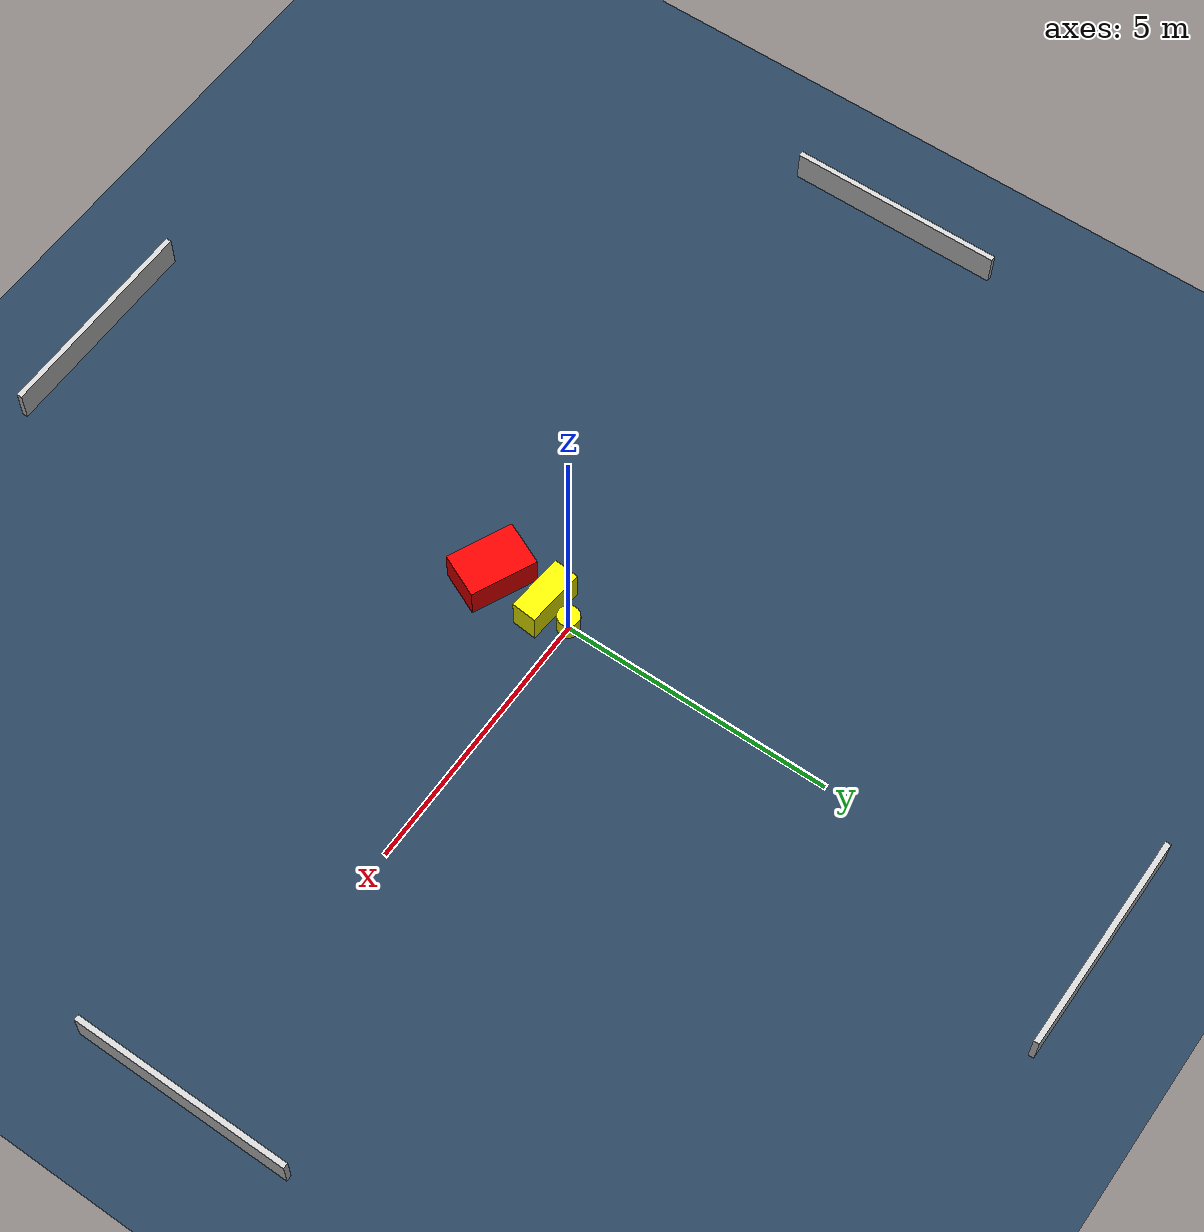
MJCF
<?xml version="1.0" ?>
<mujoco model="generated_environment">
  <option timestep="0.01" integrator="RK4" cone="elliptic"/>
  <default>
    <geom density="1"/>
  </default>
  <asset>
    <texture builtin="gradient" height="3072" name="skybox" rgb1="0.3 0.5 0.7" rgb2="0 0 0" type="skybox" width="512"/>
    <texture builtin="checker" height="300" name="groundplane" rgb1="0.2 0.3 0.4" rgb2="0.1 0.2 0.3" type="2d" width="300"/>
    <material name="groundplane" reflectance="0.2" texrepeat="5 5" texture="groundplane"/>
  </asset>
  <worldbody>
    <light dir="0 0 -1" directional="true" pos="0 0 1.5"/>
    <geom condim="3" friction="0.5 0.005 0.001" material="groundplane" name="floor" pos="0 0 0" size="0 0 0.05" type="plane"/>
    <body name="walls">
      <geom name="wall_1" condim="4" pos="-10.0 0.0 0.3" rgba="0.800000011920929 0.800000011920929 0.800000011920929 1.0" size="0.05 2.0 0.3" type="box"/>
      <geom name="wall_2" condim="4" pos="10.0 0.0 0.3" rgba="0.800000011920929 0.800000011920929 0.800000011920929 1.0" size="0.05 2.0 0.3" type="box"/>
      <geom name="wall_3" condim="4" pos="0.0 -10.0 0.3" rgba="0.800000011920929 0.800000011920929 0.800000011920929 1.0" size="2.0 0.05 0.3" type="box"/>
      <geom name="wall_4" condim="4" pos="0.0 10.0 0.3" rgba="0.800000011920929 0.800000011920929 0.800000011920929 1.0" size="2.0 0.05 0.3" type="box"/>
    </body>
    <body name="robot">
      <joint name="joint_x" type="slide" pos="0 0 0" axis="1 0 0"/>
      <joint name="joint_y" type="slide" pos="0 0 0" axis="0 1 0"/>
      <geom name="robot" type="cylinder" pos="0.0 0.0 0.2" size="0.2 0.2 0.0" mass="5.0" friction="1.0 0.005 0.0001" condim="4" rgba="1.0 1.0 0.0 1.0"/>
    </body>
    <body name="obstacle_1_movable">
      <geom name="obstacle_1_movable" condim="4" pos="-0.07722308763714432 -0.5235795989088853 0.3" euler="0 0 354.93231842534476" friction="0.0 0.005 0.001" rgba="1.0 1.0 0.0 1.0" size="0.5404025843055726 0.23254456804117662 0.3" type="box" mass="0.1"/>
      <joint type="free"/>
    </body>
    <body name="obstacle_2_static">
      <geom name="obstacle_2_static" condim="4" pos="-0.046511360031080556 -1.5815947612710257 0.3" euler="0 0 155.6607548866861" friction="0.0 0.005 0.001" rgba="1.0 0.0 0.0 1.0" size="0.6206801581360961 0.4221102443581329 0.3" type="box"/>
    </body>
  </worldbody>
  <actuator>
    <motor name="actuator_x" joint="joint_x" gear="1" ctrlrange="-1 1"/>
    <motor name="actuator_y" joint="joint_y" gear="1" ctrlrange="-1 1"/>
  </actuator>
</mujoco>
